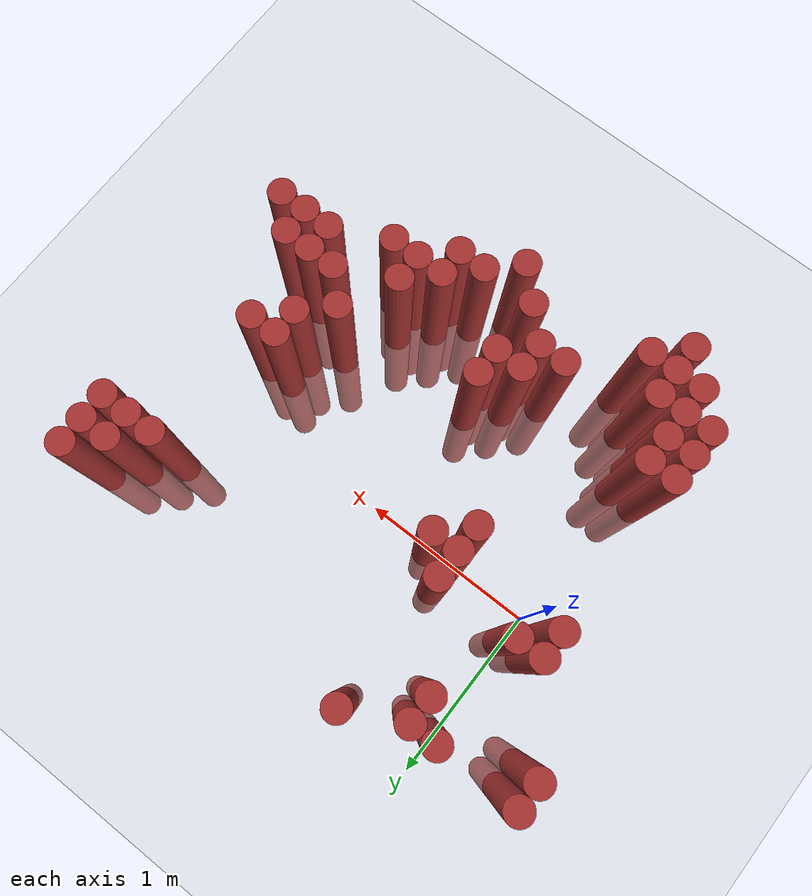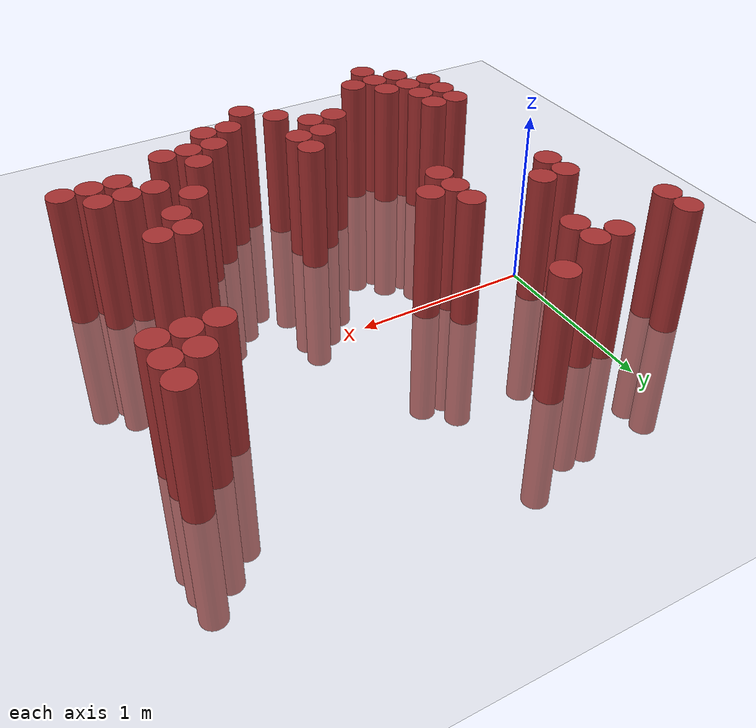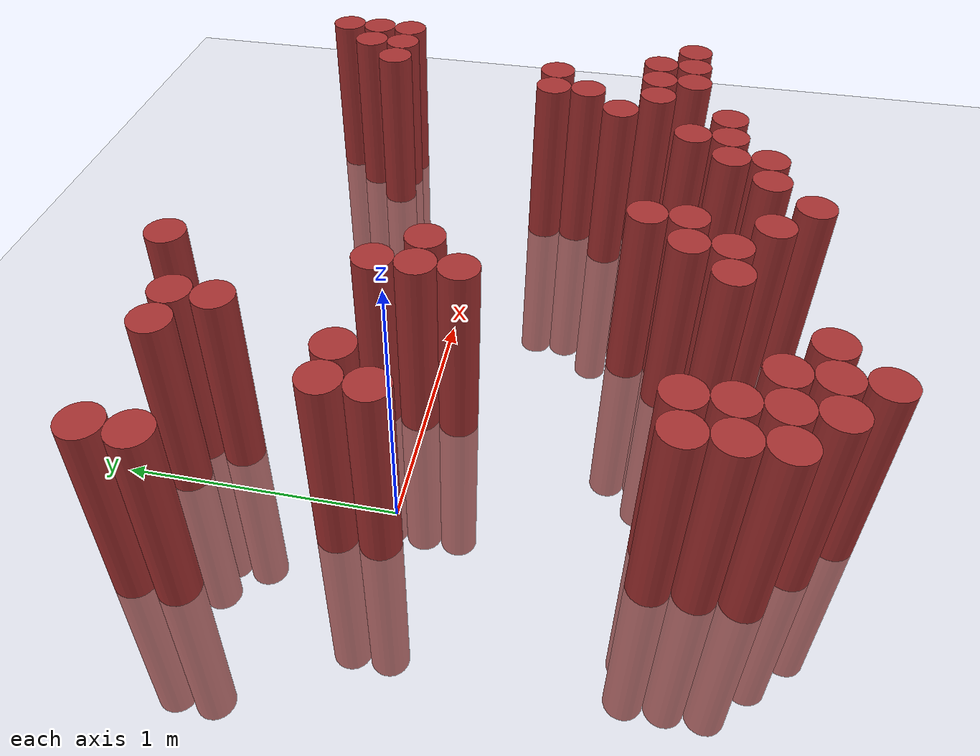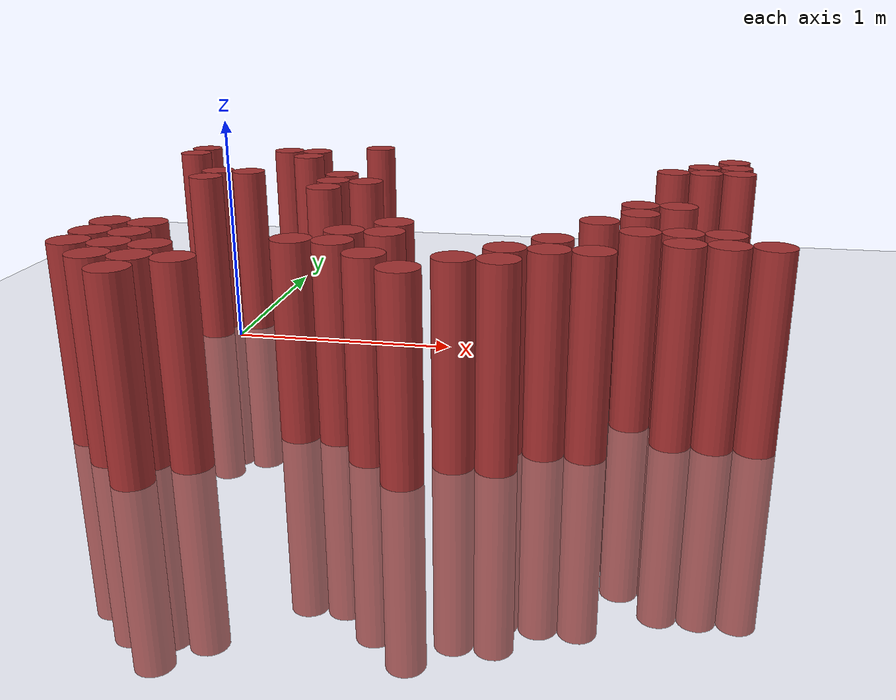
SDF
<sdf version="1.6">
 <world name="default">
  <model name="ground_plane">
   <static>1</static>
   <link name="link">
    <collision name="collision">
     <geometry><plane><normal>0 0 1</normal><size>100 100</size></plane></geometry>
     <surface><friction><ode><mu>100</mu><mu2>50</mu2></ode></friction></surface>
    </collision>
    <visual name="visual">
     <cast_shadows>0</cast_shadows>
     <geometry><plane><normal>0 0 1</normal><size>100 100</size></plane></geometry>
     <material>
      <script><uri>file://media/materials/scripts/gazebo.material</uri><name>Gazebo/Grey</name></script>
     </material>
    </visual>
   </link>
  </model>
  <model name="unit_cylinder_428">
   <static>1</static>
   <pose>-0.425000 0.625000 0.000000 0.000000 0.000000 0.000000</pose>
   <link name="link">
    <inertial>
     <mass>1</mass>
     <inertia><ixx>0.145833</ixx><ixy>0</ixy><ixz>0</ixz><iyy>0.145833</iyy><iyz>0</iyz><izz>0.125</izz></inertia>
    </inertial>
    <collision name="collision">
     <geometry><cylinder><radius>0.075000</radius><length>1.5</length></cylinder></geometry>
    </collision>
    <visual name="visual">
     <geometry><cylinder><radius>0.075000</radius><length>1.5</length></cylinder></geometry>
     <material>
      <ambient>0.648000 0.192000 0.192000 1</ambient>
      <diffuse>0.648000 0.192000 0.192000 1</diffuse>
     </material>
     <material>
      <script><name>Gazebo/Grey</name><uri>file://media/materials/scripts/gazebo.material</uri></script>
     </material>
    </visual>
   </link>
  </model>
  <model name="unit_cylinder_429">
   <static>1</static>
   <pose>-0.425000 0.775000 0.000000 0.000000 0.000000 0.000000</pose>
   <link name="link">
    <inertial>
     <mass>1</mass>
     <inertia><ixx>0.145833</ixx><ixy>0</ixy><ixz>0</ixz><iyy>0.145833</iyy><iyz>0</iyz><izz>0.125</izz></inertia>
    </inertial>
    <collision name="collision">
     <geometry><cylinder><radius>0.075000</radius><length>1.5</length></cylinder></geometry>
    </collision>
    <visual name="visual">
     <geometry><cylinder><radius>0.075000</radius><length>1.5</length></cylinder></geometry>
     <material>
      <ambient>0.648000 0.192000 0.192000 1</ambient>
      <diffuse>0.648000 0.192000 0.192000 1</diffuse>
     </material>
     <material>
      <script><name>Gazebo/Grey</name><uri>file://media/materials/scripts/gazebo.material</uri></script>
     </material>
    </visual>
   </link>
  </model>
  <model name="unit_cylinder_433">
   <static>1</static>
   <pose>-0.125000 -1.175000 0.000000 0.000000 0.000000 0.000000</pose>
   <link name="link">
    <inertial>
     <mass>1</mass>
     <inertia><ixx>0.145833</ixx><ixy>0</ixy><ixz>0</ixz><iyy>0.145833</iyy><iyz>0</iyz><izz>0.125</izz></inertia>
    </inertial>
    <collision name="collision">
     <geometry><cylinder><radius>0.075000</radius><length>1.5</length></cylinder></geometry>
    </collision>
    <visual name="visual">
     <geometry><cylinder><radius>0.075000</radius><length>1.5</length></cylinder></geometry>
     <material>
      <ambient>0.648000 0.192000 0.192000 1</ambient>
      <diffuse>0.648000 0.192000 0.192000 1</diffuse>
     </material>
     <material>
      <script><name>Gazebo/Grey</name><uri>file://media/materials/scripts/gazebo.material</uri></script>
     </material>
    </visual>
   </link>
  </model>
  <model name="unit_cylinder_434">
   <static>1</static>
   <pose>-0.125000 -1.025000 0.000000 0.000000 0.000000 0.000000</pose>
   <link name="link">
    <inertial>
     <mass>1</mass>
     <inertia><ixx>0.145833</ixx><ixy>0</ixy><ixz>0</ixz><iyy>0.145833</iyy><iyz>0</iyz><izz>0.125</izz></inertia>
    </inertial>
    <collision name="collision">
     <geometry><cylinder><radius>0.075000</radius><length>1.5</length></cylinder></geometry>
    </collision>
    <visual name="visual">
     <geometry><cylinder><radius>0.075000</radius><length>1.5</length></cylinder></geometry>
     <material>
      <ambient>0.648000 0.192000 0.192000 1</ambient>
      <diffuse>0.648000 0.192000 0.192000 1</diffuse>
     </material>
     <material>
      <script><name>Gazebo/Grey</name><uri>file://media/materials/scripts/gazebo.material</uri></script>
     </material>
    </visual>
   </link>
  </model>
  <model name="unit_cylinder_435">
   <static>1</static>
   <pose>-0.125000 -0.875000 0.000000 0.000000 0.000000 0.000000</pose>
   <link name="link">
    <inertial>
     <mass>1</mass>
     <inertia><ixx>0.145833</ixx><ixy>0</ixy><ixz>0</ixz><iyy>0.145833</iyy><iyz>0</iyz><izz>0.125</izz></inertia>
    </inertial>
    <collision name="collision">
     <geometry><cylinder><radius>0.075000</radius><length>1.5</length></cylinder></geometry>
    </collision>
    <visual name="visual">
     <geometry><cylinder><radius>0.075000</radius><length>1.5</length></cylinder></geometry>
     <material>
      <ambient>0.648000 0.192000 0.192000 1</ambient>
      <diffuse>0.648000 0.192000 0.192000 1</diffuse>
     </material>
     <material>
      <script><name>Gazebo/Grey</name><uri>file://media/materials/scripts/gazebo.material</uri></script>
     </material>
    </visual>
   </link>
  </model>
  <model name="unit_cylinder_436">
   <static>1</static>
   <pose>-0.125000 0.025000 0.000000 0.000000 0.000000 0.000000</pose>
   <link name="link">
    <inertial>
     <mass>1</mass>
     <inertia><ixx>0.145833</ixx><ixy>0</ixy><ixz>0</ixz><iyy>0.145833</iyy><iyz>0</iyz><izz>0.125</izz></inertia>
    </inertial>
    <collision name="collision">
     <geometry><cylinder><radius>0.075000</radius><length>1.5</length></cylinder></geometry>
    </collision>
    <visual name="visual">
     <geometry><cylinder><radius>0.075000</radius><length>1.5</length></cylinder></geometry>
     <material>
      <ambient>0.648000 0.192000 0.192000 1</ambient>
      <diffuse>0.648000 0.192000 0.192000 1</diffuse>
     </material>
     <material>
      <script><name>Gazebo/Grey</name><uri>file://media/materials/scripts/gazebo.material</uri></script>
     </material>
    </visual>
   </link>
  </model>
  <model name="unit_cylinder_437">
   <static>1</static>
   <pose>-0.125000 0.175000 0.000000 0.000000 0.000000 0.000000</pose>
   <link name="link">
    <inertial>
     <mass>1</mass>
     <inertia><ixx>0.145833</ixx><ixy>0</ixy><ixz>0</ixz><iyy>0.145833</iyy><iyz>0</iyz><izz>0.125</izz></inertia>
    </inertial>
    <collision name="collision">
     <geometry><cylinder><radius>0.075000</radius><length>1.5</length></cylinder></geometry>
    </collision>
    <visual name="visual">
     <geometry><cylinder><radius>0.075000</radius><length>1.5</length></cylinder></geometry>
     <material>
      <ambient>0.648000 0.192000 0.192000 1</ambient>
      <diffuse>0.648000 0.192000 0.192000 1</diffuse>
     </material>
     <material>
      <script><name>Gazebo/Grey</name><uri>file://media/materials/scripts/gazebo.material</uri></script>
     </material>
    </visual>
   </link>
  </model>
  <model name="unit_cylinder_438">
   <static>1</static>
   <pose>0.025000 -1.325000 0.000000 0.000000 0.000000 0.000000</pose>
   <link name="link">
    <inertial>
     <mass>1</mass>
     <inertia><ixx>0.145833</ixx><ixy>0</ixy><ixz>0</ixz><iyy>0.145833</iyy><iyz>0</iyz><izz>0.125</izz></inertia>
    </inertial>
    <collision name="collision">
     <geometry><cylinder><radius>0.075000</radius><length>1.5</length></cylinder></geometry>
    </collision>
    <visual name="visual">
     <geometry><cylinder><radius>0.075000</radius><length>1.5</length></cylinder></geometry>
     <material>
      <ambient>0.648000 0.192000 0.192000 1</ambient>
      <diffuse>0.648000 0.192000 0.192000 1</diffuse>
     </material>
     <material>
      <script><name>Gazebo/Grey</name><uri>file://media/materials/scripts/gazebo.material</uri></script>
     </material>
    </visual>
   </link>
  </model>
  <model name="unit_cylinder_439">
   <static>1</static>
   <pose>0.025000 -1.175000 0.000000 0.000000 0.000000 0.000000</pose>
   <link name="link">
    <inertial>
     <mass>1</mass>
     <inertia><ixx>0.145833</ixx><ixy>0</ixy><ixz>0</ixz><iyy>0.145833</iyy><iyz>0</iyz><izz>0.125</izz></inertia>
    </inertial>
    <collision name="collision">
     <geometry><cylinder><radius>0.075000</radius><length>1.5</length></cylinder></geometry>
    </collision>
    <visual name="visual">
     <geometry><cylinder><radius>0.075000</radius><length>1.5</length></cylinder></geometry>
     <material>
      <ambient>0.648000 0.192000 0.192000 1</ambient>
      <diffuse>0.648000 0.192000 0.192000 1</diffuse>
     </material>
     <material>
      <script><name>Gazebo/Grey</name><uri>file://media/materials/scripts/gazebo.material</uri></script>
     </material>
    </visual>
   </link>
  </model>
  <model name="unit_cylinder_440">
   <static>1</static>
   <pose>0.025000 -1.025000 0.000000 0.000000 0.000000 0.000000</pose>
   <link name="link">
    <inertial>
     <mass>1</mass>
     <inertia><ixx>0.145833</ixx><ixy>0</ixy><ixz>0</ixz><iyy>0.145833</iyy><iyz>0</iyz><izz>0.125</izz></inertia>
    </inertial>
    <collision name="collision">
     <geometry><cylinder><radius>0.075000</radius><length>1.5</length></cylinder></geometry>
    </collision>
    <visual name="visual">
     <geometry><cylinder><radius>0.075000</radius><length>1.5</length></cylinder></geometry>
     <material>
      <ambient>0.648000 0.192000 0.192000 1</ambient>
      <diffuse>0.648000 0.192000 0.192000 1</diffuse>
     </material>
     <material>
      <script><name>Gazebo/Grey</name><uri>file://media/materials/scripts/gazebo.material</uri></script>
     </material>
    </visual>
   </link>
  </model>
  <model name="unit_cylinder_441">
   <static>1</static>
   <pose>0.025000 -0.875000 0.000000 0.000000 0.000000 0.000000</pose>
   <link name="link">
    <inertial>
     <mass>1</mass>
     <inertia><ixx>0.145833</ixx><ixy>0</ixy><ixz>0</ixz><iyy>0.145833</iyy><iyz>0</iyz><izz>0.125</izz></inertia>
    </inertial>
    <collision name="collision">
     <geometry><cylinder><radius>0.075000</radius><length>1.5</length></cylinder></geometry>
    </collision>
    <visual name="visual">
     <geometry><cylinder><radius>0.075000</radius><length>1.5</length></cylinder></geometry>
     <material>
      <ambient>0.648000 0.192000 0.192000 1</ambient>
      <diffuse>0.648000 0.192000 0.192000 1</diffuse>
     </material>
     <material>
      <script><name>Gazebo/Grey</name><uri>file://media/materials/scripts/gazebo.material</uri></script>
     </material>
    </visual>
   </link>
  </model>
  <model name="unit_cylinder_442">
   <static>1</static>
   <pose>0.025000 0.175000 0.000000 0.000000 0.000000 0.000000</pose>
   <link name="link">
    <inertial>
     <mass>1</mass>
     <inertia><ixx>0.145833</ixx><ixy>0</ixy><ixz>0</ixz><iyy>0.145833</iyy><iyz>0</iyz><izz>0.125</izz></inertia>
    </inertial>
    <collision name="collision">
     <geometry><cylinder><radius>0.075000</radius><length>1.5</length></cylinder></geometry>
    </collision>
    <visual name="visual">
     <geometry><cylinder><radius>0.075000</radius><length>1.5</length></cylinder></geometry>
     <material>
      <ambient>0.648000 0.192000 0.192000 1</ambient>
      <diffuse>0.648000 0.192000 0.192000 1</diffuse>
     </material>
     <material>
      <script><name>Gazebo/Grey</name><uri>file://media/materials/scripts/gazebo.material</uri></script>
     </material>
    </visual>
   </link>
  </model>
  <model name="unit_cylinder_443">
   <static>1</static>
   <pose>0.025000 0.775000 0.000000 0.000000 0.000000 0.000000</pose>
   <link name="link">
    <inertial>
     <mass>1</mass>
     <inertia><ixx>0.145833</ixx><ixy>0</ixy><ixz>0</ixz><iyy>0.145833</iyy><iyz>0</iyz><izz>0.125</izz></inertia>
    </inertial>
    <collision name="collision">
     <geometry><cylinder><radius>0.075000</radius><length>1.5</length></cylinder></geometry>
    </collision>
    <visual name="visual">
     <geometry><cylinder><radius>0.075000</radius><length>1.5</length></cylinder></geometry>
     <material>
      <ambient>0.648000 0.192000 0.192000 1</ambient>
      <diffuse>0.648000 0.192000 0.192000 1</diffuse>
     </material>
     <material>
      <script><name>Gazebo/Grey</name><uri>file://media/materials/scripts/gazebo.material</uri></script>
     </material>
    </visual>
   </link>
  </model>
  <model name="unit_cylinder_445">
   <static>1</static>
   <pose>0.175000 -1.475000 0.000000 0.000000 0.000000 0.000000</pose>
   <link name="link">
    <inertial>
     <mass>1</mass>
     <inertia><ixx>0.145833</ixx><ixy>0</ixy><ixz>0</ixz><iyy>0.145833</iyy><iyz>0</iyz><izz>0.125</izz></inertia>
    </inertial>
    <collision name="collision">
     <geometry><cylinder><radius>0.075000</radius><length>1.5</length></cylinder></geometry>
    </collision>
    <visual name="visual">
     <geometry><cylinder><radius>0.075000</radius><length>1.5</length></cylinder></geometry>
     <material>
      <ambient>0.648000 0.192000 0.192000 1</ambient>
      <diffuse>0.648000 0.192000 0.192000 1</diffuse>
     </material>
     <material>
      <script><name>Gazebo/Grey</name><uri>file://media/materials/scripts/gazebo.material</uri></script>
     </material>
    </visual>
   </link>
  </model>
  <model name="unit_cylinder_446">
   <static>1</static>
   <pose>0.175000 -1.325000 0.000000 0.000000 0.000000 0.000000</pose>
   <link name="link">
    <inertial>
     <mass>1</mass>
     <inertia><ixx>0.145833</ixx><ixy>0</ixy><ixz>0</ixz><iyy>0.145833</iyy><iyz>0</iyz><izz>0.125</izz></inertia>
    </inertial>
    <collision name="collision">
     <geometry><cylinder><radius>0.075000</radius><length>1.5</length></cylinder></geometry>
    </collision>
    <visual name="visual">
     <geometry><cylinder><radius>0.075000</radius><length>1.5</length></cylinder></geometry>
     <material>
      <ambient>0.648000 0.192000 0.192000 1</ambient>
      <diffuse>0.648000 0.192000 0.192000 1</diffuse>
     </material>
     <material>
      <script><name>Gazebo/Grey</name><uri>file://media/materials/scripts/gazebo.material</uri></script>
     </material>
    </visual>
   </link>
  </model>
  <model name="unit_cylinder_447">
   <static>1</static>
   <pose>0.175000 -1.175000 0.000000 0.000000 0.000000 0.000000</pose>
   <link name="link">
    <inertial>
     <mass>1</mass>
     <inertia><ixx>0.145833</ixx><ixy>0</ixy><ixz>0</ixz><iyy>0.145833</iyy><iyz>0</iyz><izz>0.125</izz></inertia>
    </inertial>
    <collision name="collision">
     <geometry><cylinder><radius>0.075000</radius><length>1.5</length></cylinder></geometry>
    </collision>
    <visual name="visual">
     <geometry><cylinder><radius>0.075000</radius><length>1.5</length></cylinder></geometry>
     <material>
      <ambient>0.648000 0.192000 0.192000 1</ambient>
      <diffuse>0.648000 0.192000 0.192000 1</diffuse>
     </material>
     <material>
      <script><name>Gazebo/Grey</name><uri>file://media/materials/scripts/gazebo.material</uri></script>
     </material>
    </visual>
   </link>
  </model>
  <model name="unit_cylinder_448">
   <static>1</static>
   <pose>0.175000 0.625000 0.000000 0.000000 0.000000 0.000000</pose>
   <link name="link">
    <inertial>
     <mass>1</mass>
     <inertia><ixx>0.145833</ixx><ixy>0</ixy><ixz>0</ixz><iyy>0.145833</iyy><iyz>0</iyz><izz>0.125</izz></inertia>
    </inertial>
    <collision name="collision">
     <geometry><cylinder><radius>0.075000</radius><length>1.5</length></cylinder></geometry>
    </collision>
    <visual name="visual">
     <geometry><cylinder><radius>0.075000</radius><length>1.5</length></cylinder></geometry>
     <material>
      <ambient>0.648000 0.192000 0.192000 1</ambient>
      <diffuse>0.648000 0.192000 0.192000 1</diffuse>
     </material>
     <material>
      <script><name>Gazebo/Grey</name><uri>file://media/materials/scripts/gazebo.material</uri></script>
     </material>
    </visual>
   </link>
  </model>
  <model name="unit_cylinder_449">
   <static>1</static>
   <pose>0.175000 0.775000 0.000000 0.000000 0.000000 0.000000</pose>
   <link name="link">
    <inertial>
     <mass>1</mass>
     <inertia><ixx>0.145833</ixx><ixy>0</ixy><ixz>0</ixz><iyy>0.145833</iyy><iyz>0</iyz><izz>0.125</izz></inertia>
    </inertial>
    <collision name="collision">
     <geometry><cylinder><radius>0.075000</radius><length>1.5</length></cylinder></geometry>
    </collision>
    <visual name="visual">
     <geometry><cylinder><radius>0.075000</radius><length>1.5</length></cylinder></geometry>
     <material>
      <ambient>0.648000 0.192000 0.192000 1</ambient>
      <diffuse>0.648000 0.192000 0.192000 1</diffuse>
     </material>
     <material>
      <script><name>Gazebo/Grey</name><uri>file://media/materials/scripts/gazebo.material</uri></script>
     </material>
    </visual>
   </link>
  </model>
  <model name="unit_cylinder_453">
   <static>1</static>
   <pose>0.325000 -1.325000 0.000000 0.000000 0.000000 0.000000</pose>
   <link name="link">
    <inertial>
     <mass>1</mass>
     <inertia><ixx>0.145833</ixx><ixy>0</ixy><ixz>0</ixz><iyy>0.145833</iyy><iyz>0</iyz><izz>0.125</izz></inertia>
    </inertial>
    <collision name="collision">
     <geometry><cylinder><radius>0.075000</radius><length>1.5</length></cylinder></geometry>
    </collision>
    <visual name="visual">
     <geometry><cylinder><radius>0.075000</radius><length>1.5</length></cylinder></geometry>
     <material>
      <ambient>0.648000 0.192000 0.192000 1</ambient>
      <diffuse>0.648000 0.192000 0.192000 1</diffuse>
     </material>
     <material>
      <script><name>Gazebo/Grey</name><uri>file://media/materials/scripts/gazebo.material</uri></script>
     </material>
    </visual>
   </link>
  </model>
  <model name="unit_cylinder_457">
   <static>1</static>
   <pose>0.475000 -0.125000 0.000000 0.000000 0.000000 0.000000</pose>
   <link name="link">
    <inertial>
     <mass>1</mass>
     <inertia><ixx>0.145833</ixx><ixy>0</ixy><ixz>0</ixz><iyy>0.145833</iyy><iyz>0</iyz><izz>0.125</izz></inertia>
    </inertial>
    <collision name="collision">
     <geometry><cylinder><radius>0.075000</radius><length>1.5</length></cylinder></geometry>
    </collision>
    <visual name="visual">
     <geometry><cylinder><radius>0.075000</radius><length>1.5</length></cylinder></geometry>
     <material>
      <ambient>0.648000 0.192000 0.192000 1</ambient>
      <diffuse>0.648000 0.192000 0.192000 1</diffuse>
     </material>
     <material>
      <script><name>Gazebo/Grey</name><uri>file://media/materials/scripts/gazebo.material</uri></script>
     </material>
    </visual>
   </link>
  </model>
  <model name="unit_cylinder_458">
   <static>1</static>
   <pose>0.475000 0.025000 0.000000 0.000000 0.000000 0.000000</pose>
   <link name="link">
    <inertial>
     <mass>1</mass>
     <inertia><ixx>0.145833</ixx><ixy>0</ixy><ixz>0</ixz><iyy>0.145833</iyy><iyz>0</iyz><izz>0.125</izz></inertia>
    </inertial>
    <collision name="collision">
     <geometry><cylinder><radius>0.075000</radius><length>1.5</length></cylinder></geometry>
    </collision>
    <visual name="visual">
     <geometry><cylinder><radius>0.075000</radius><length>1.5</length></cylinder></geometry>
     <material>
      <ambient>0.648000 0.192000 0.192000 1</ambient>
      <diffuse>0.648000 0.192000 0.192000 1</diffuse>
     </material>
     <material>
      <script><name>Gazebo/Grey</name><uri>file://media/materials/scripts/gazebo.material</uri></script>
     </material>
    </visual>
   </link>
  </model>
  <model name="unit_cylinder_459">
   <static>1</static>
   <pose>0.475000 0.175000 0.000000 0.000000 0.000000 0.000000</pose>
   <link name="link">
    <inertial>
     <mass>1</mass>
     <inertia><ixx>0.145833</ixx><ixy>0</ixy><ixz>0</ixz><iyy>0.145833</iyy><iyz>0</iyz><izz>0.125</izz></inertia>
    </inertial>
    <collision name="collision">
     <geometry><cylinder><radius>0.075000</radius><length>1.5</length></cylinder></geometry>
    </collision>
    <visual name="visual">
     <geometry><cylinder><radius>0.075000</radius><length>1.5</length></cylinder></geometry>
     <material>
      <ambient>0.648000 0.192000 0.192000 1</ambient>
      <diffuse>0.648000 0.192000 0.192000 1</diffuse>
     </material>
     <material>
      <script><name>Gazebo/Grey</name><uri>file://media/materials/scripts/gazebo.material</uri></script>
     </material>
    </visual>
   </link>
  </model>
  <model name="unit_cylinder_460">
   <static>1</static>
   <pose>0.475000 0.925000 0.000000 0.000000 0.000000 0.000000</pose>
   <link name="link">
    <inertial>
     <mass>1</mass>
     <inertia><ixx>0.145833</ixx><ixy>0</ixy><ixz>0</ixz><iyy>0.145833</iyy><iyz>0</iyz><izz>0.125</izz></inertia>
    </inertial>
    <collision name="collision">
     <geometry><cylinder><radius>0.075000</radius><length>1.5</length></cylinder></geometry>
    </collision>
    <visual name="visual">
     <geometry><cylinder><radius>0.075000</radius><length>1.5</length></cylinder></geometry>
     <material>
      <ambient>0.648000 0.192000 0.192000 1</ambient>
      <diffuse>0.648000 0.192000 0.192000 1</diffuse>
     </material>
     <material>
      <script><name>Gazebo/Grey</name><uri>file://media/materials/scripts/gazebo.material</uri></script>
     </material>
    </visual>
   </link>
  </model>
  <model name="unit_cylinder_466">
   <static>1</static>
   <pose>0.625000 -1.025000 0.000000 0.000000 0.000000 0.000000</pose>
   <link name="link">
    <inertial>
     <mass>1</mass>
     <inertia><ixx>0.145833</ixx><ixy>0</ixy><ixz>0</ixz><iyy>0.145833</iyy><iyz>0</iyz><izz>0.125</izz></inertia>
    </inertial>
    <collision name="collision">
     <geometry><cylinder><radius>0.075000</radius><length>1.5</length></cylinder></geometry>
    </collision>
    <visual name="visual">
     <geometry><cylinder><radius>0.075000</radius><length>1.5</length></cylinder></geometry>
     <material>
      <ambient>0.648000 0.192000 0.192000 1</ambient>
      <diffuse>0.648000 0.192000 0.192000 1</diffuse>
     </material>
     <material>
      <script><name>Gazebo/Grey</name><uri>file://media/materials/scripts/gazebo.material</uri></script>
     </material>
    </visual>
   </link>
  </model>
  <model name="unit_cylinder_467">
   <static>1</static>
   <pose>0.625000 0.025000 0.000000 0.000000 0.000000 0.000000</pose>
   <link name="link">
    <inertial>
     <mass>1</mass>
     <inertia><ixx>0.145833</ixx><ixy>0</ixy><ixz>0</ixz><iyy>0.145833</iyy><iyz>0</iyz><izz>0.125</izz></inertia>
    </inertial>
    <collision name="collision">
     <geometry><cylinder><radius>0.075000</radius><length>1.5</length></cylinder></geometry>
    </collision>
    <visual name="visual">
     <geometry><cylinder><radius>0.075000</radius><length>1.5</length></cylinder></geometry>
     <material>
      <ambient>0.648000 0.192000 0.192000 1</ambient>
      <diffuse>0.648000 0.192000 0.192000 1</diffuse>
     </material>
     <material>
      <script><name>Gazebo/Grey</name><uri>file://media/materials/scripts/gazebo.material</uri></script>
     </material>
    </visual>
   </link>
  </model>
  <model name="unit_cylinder_473">
   <static>1</static>
   <pose>0.775000 -1.025000 0.000000 0.000000 0.000000 0.000000</pose>
   <link name="link">
    <inertial>
     <mass>1</mass>
     <inertia><ixx>0.145833</ixx><ixy>0</ixy><ixz>0</ixz><iyy>0.145833</iyy><iyz>0</iyz><izz>0.125</izz></inertia>
    </inertial>
    <collision name="collision">
     <geometry><cylinder><radius>0.075000</radius><length>1.5</length></cylinder></geometry>
    </collision>
    <visual name="visual">
     <geometry><cylinder><radius>0.075000</radius><length>1.5</length></cylinder></geometry>
     <material>
      <ambient>0.648000 0.192000 0.192000 1</ambient>
      <diffuse>0.648000 0.192000 0.192000 1</diffuse>
     </material>
     <material>
      <script><name>Gazebo/Grey</name><uri>file://media/materials/scripts/gazebo.material</uri></script>
     </material>
    </visual>
   </link>
  </model>
  <model name="unit_cylinder_474">
   <static>1</static>
   <pose>0.775000 -0.875000 0.000000 0.000000 0.000000 0.000000</pose>
   <link name="link">
    <inertial>
     <mass>1</mass>
     <inertia><ixx>0.145833</ixx><ixy>0</ixy><ixz>0</ixz><iyy>0.145833</iyy><iyz>0</iyz><izz>0.125</izz></inertia>
    </inertial>
    <collision name="collision">
     <geometry><cylinder><radius>0.075000</radius><length>1.5</length></cylinder></geometry>
    </collision>
    <visual name="visual">
     <geometry><cylinder><radius>0.075000</radius><length>1.5</length></cylinder></geometry>
     <material>
      <ambient>0.648000 0.192000 0.192000 1</ambient>
      <diffuse>0.648000 0.192000 0.192000 1</diffuse>
     </material>
     <material>
      <script><name>Gazebo/Grey</name><uri>file://media/materials/scripts/gazebo.material</uri></script>
     </material>
    </visual>
   </link>
  </model>
  <model name="unit_cylinder_475">
   <static>1</static>
   <pose>0.925000 -1.175000 0.000000 0.000000 0.000000 0.000000</pose>
   <link name="link">
    <inertial>
     <mass>1</mass>
     <inertia><ixx>0.145833</ixx><ixy>0</ixy><ixz>0</ixz><iyy>0.145833</iyy><iyz>0</iyz><izz>0.125</izz></inertia>
    </inertial>
    <collision name="collision">
     <geometry><cylinder><radius>0.075000</radius><length>1.5</length></cylinder></geometry>
    </collision>
    <visual name="visual">
     <geometry><cylinder><radius>0.075000</radius><length>1.5</length></cylinder></geometry>
     <material>
      <ambient>0.648000 0.192000 0.192000 1</ambient>
      <diffuse>0.648000 0.192000 0.192000 1</diffuse>
     </material>
     <material>
      <script><name>Gazebo/Grey</name><uri>file://media/materials/scripts/gazebo.material</uri></script>
     </material>
    </visual>
   </link>
  </model>
  <model name="unit_cylinder_476">
   <static>1</static>
   <pose>0.925000 -0.875000 0.000000 0.000000 0.000000 0.000000</pose>
   <link name="link">
    <inertial>
     <mass>1</mass>
     <inertia><ixx>0.145833</ixx><ixy>0</ixy><ixz>0</ixz><iyy>0.145833</iyy><iyz>0</iyz><izz>0.125</izz></inertia>
    </inertial>
    <collision name="collision">
     <geometry><cylinder><radius>0.075000</radius><length>1.5</length></cylinder></geometry>
    </collision>
    <visual name="visual">
     <geometry><cylinder><radius>0.075000</radius><length>1.5</length></cylinder></geometry>
     <material>
      <ambient>0.648000 0.192000 0.192000 1</ambient>
      <diffuse>0.648000 0.192000 0.192000 1</diffuse>
     </material>
     <material>
      <script><name>Gazebo/Grey</name><uri>file://media/materials/scripts/gazebo.material</uri></script>
     </material>
    </visual>
   </link>
  </model>
  <model name="unit_cylinder_477">
   <static>1</static>
   <pose>0.925000 -0.725000 0.000000 0.000000 0.000000 0.000000</pose>
   <link name="link">
    <inertial>
     <mass>1</mass>
     <inertia><ixx>0.145833</ixx><ixy>0</ixy><ixz>0</ixz><iyy>0.145833</iyy><iyz>0</iyz><izz>0.125</izz></inertia>
    </inertial>
    <collision name="collision">
     <geometry><cylinder><radius>0.075000</radius><length>1.5</length></cylinder></geometry>
    </collision>
    <visual name="visual">
     <geometry><cylinder><radius>0.075000</radius><length>1.5</length></cylinder></geometry>
     <material>
      <ambient>0.648000 0.192000 0.192000 1</ambient>
      <diffuse>0.648000 0.192000 0.192000 1</diffuse>
     </material>
     <material>
      <script><name>Gazebo/Grey</name><uri>file://media/materials/scripts/gazebo.material</uri></script>
     </material>
    </visual>
   </link>
  </model>
  <model name="unit_cylinder_478">
   <static>1</static>
   <pose>1.075000 -1.325000 0.000000 0.000000 0.000000 0.000000</pose>
   <link name="link">
    <inertial>
     <mass>1</mass>
     <inertia><ixx>0.145833</ixx><ixy>0</ixy><ixz>0</ixz><iyy>0.145833</iyy><iyz>0</iyz><izz>0.125</izz></inertia>
    </inertial>
    <collision name="collision">
     <geometry><cylinder><radius>0.075000</radius><length>1.5</length></cylinder></geometry>
    </collision>
    <visual name="visual">
     <geometry><cylinder><radius>0.075000</radius><length>1.5</length></cylinder></geometry>
     <material>
      <ambient>0.648000 0.192000 0.192000 1</ambient>
      <diffuse>0.648000 0.192000 0.192000 1</diffuse>
     </material>
     <material>
      <script><name>Gazebo/Grey</name><uri>file://media/materials/scripts/gazebo.material</uri></script>
     </material>
    </visual>
   </link>
  </model>
  <model name="unit_cylinder_479">
   <static>1</static>
   <pose>1.225000 -1.175000 0.000000 0.000000 0.000000 0.000000</pose>
   <link name="link">
    <inertial>
     <mass>1</mass>
     <inertia><ixx>0.145833</ixx><ixy>0</ixy><ixz>0</ixz><iyy>0.145833</iyy><iyz>0</iyz><izz>0.125</izz></inertia>
    </inertial>
    <collision name="collision">
     <geometry><cylinder><radius>0.075000</radius><length>1.5</length></cylinder></geometry>
    </collision>
    <visual name="visual">
     <geometry><cylinder><radius>0.075000</radius><length>1.5</length></cylinder></geometry>
     <material>
      <ambient>0.648000 0.192000 0.192000 1</ambient>
      <diffuse>0.648000 0.192000 0.192000 1</diffuse>
     </material>
     <material>
      <script><name>Gazebo/Grey</name><uri>file://media/materials/scripts/gazebo.material</uri></script>
     </material>
    </visual>
   </link>
  </model>
  <model name="unit_cylinder_480">
   <static>1</static>
   <pose>1.375000 -1.175000 0.000000 0.000000 0.000000 0.000000</pose>
   <link name="link">
    <inertial>
     <mass>1</mass>
     <inertia><ixx>0.145833</ixx><ixy>0</ixy><ixz>0</ixz><iyy>0.145833</iyy><iyz>0</iyz><izz>0.125</izz></inertia>
    </inertial>
    <collision name="collision">
     <geometry><cylinder><radius>0.075000</radius><length>1.5</length></cylinder></geometry>
    </collision>
    <visual name="visual">
     <geometry><cylinder><radius>0.075000</radius><length>1.5</length></cylinder></geometry>
     <material>
      <ambient>0.648000 0.192000 0.192000 1</ambient>
      <diffuse>0.648000 0.192000 0.192000 1</diffuse>
     </material>
     <material>
      <script><name>Gazebo/Grey</name><uri>file://media/materials/scripts/gazebo.material</uri></script>
     </material>
    </visual>
   </link>
  </model>
  <model name="unit_cylinder_481">
   <static>1</static>
   <pose>1.375000 -1.025000 0.000000 0.000000 0.000000 0.000000</pose>
   <link name="link">
    <inertial>
     <mass>1</mass>
     <inertia><ixx>0.145833</ixx><ixy>0</ixy><ixz>0</ixz><iyy>0.145833</iyy><iyz>0</iyz><izz>0.125</izz></inertia>
    </inertial>
    <collision name="collision">
     <geometry><cylinder><radius>0.075000</radius><length>1.5</length></cylinder></geometry>
    </collision>
    <visual name="visual">
     <geometry><cylinder><radius>0.075000</radius><length>1.5</length></cylinder></geometry>
     <material>
      <ambient>0.648000 0.192000 0.192000 1</ambient>
      <diffuse>0.648000 0.192000 0.192000 1</diffuse>
     </material>
     <material>
      <script><name>Gazebo/Grey</name><uri>file://media/materials/scripts/gazebo.material</uri></script>
     </material>
    </visual>
   </link>
  </model>
  <model name="unit_cylinder_482">
   <static>1</static>
   <pose>1.525000 -1.025000 0.000000 0.000000 0.000000 0.000000</pose>
   <link name="link">
    <inertial>
     <mass>1</mass>
     <inertia><ixx>0.145833</ixx><ixy>0</ixy><ixz>0</ixz><iyy>0.145833</iyy><iyz>0</iyz><izz>0.125</izz></inertia>
    </inertial>
    <collision name="collision">
     <geometry><cylinder><radius>0.075000</radius><length>1.5</length></cylinder></geometry>
    </collision>
    <visual name="visual">
     <geometry><cylinder><radius>0.075000</radius><length>1.5</length></cylinder></geometry>
     <material>
      <ambient>0.648000 0.192000 0.192000 1</ambient>
      <diffuse>0.648000 0.192000 0.192000 1</diffuse>
     </material>
     <material>
      <script><name>Gazebo/Grey</name><uri>file://media/materials/scripts/gazebo.material</uri></script>
     </material>
    </visual>
   </link>
  </model>
  <model name="unit_cylinder_483">
   <static>1</static>
   <pose>1.525000 -0.875000 0.000000 0.000000 0.000000 0.000000</pose>
   <link name="link">
    <inertial>
     <mass>1</mass>
     <inertia><ixx>0.145833</ixx><ixy>0</ixy><ixz>0</ixz><iyy>0.145833</iyy><iyz>0</iyz><izz>0.125</izz></inertia>
    </inertial>
    <collision name="collision">
     <geometry><cylinder><radius>0.075000</radius><length>1.5</length></cylinder></geometry>
    </collision>
    <visual name="visual">
     <geometry><cylinder><radius>0.075000</radius><length>1.5</length></cylinder></geometry>
     <material>
      <ambient>0.648000 0.192000 0.192000 1</ambient>
      <diffuse>0.648000 0.192000 0.192000 1</diffuse>
     </material>
     <material>
      <script><name>Gazebo/Grey</name><uri>file://media/materials/scripts/gazebo.material</uri></script>
     </material>
    </visual>
   </link>
  </model>
  <model name="unit_cylinder_484">
   <static>1</static>
   <pose>1.675000 -1.025000 0.000000 0.000000 0.000000 0.000000</pose>
   <link name="link">
    <inertial>
     <mass>1</mass>
     <inertia><ixx>0.145833</ixx><ixy>0</ixy><ixz>0</ixz><iyy>0.145833</iyy><iyz>0</iyz><izz>0.125</izz></inertia>
    </inertial>
    <collision name="collision">
     <geometry><cylinder><radius>0.075000</radius><length>1.5</length></cylinder></geometry>
    </collision>
    <visual name="visual">
     <geometry><cylinder><radius>0.075000</radius><length>1.5</length></cylinder></geometry>
     <material>
      <ambient>0.648000 0.192000 0.192000 1</ambient>
      <diffuse>0.648000 0.192000 0.192000 1</diffuse>
     </material>
     <material>
      <script><name>Gazebo/Grey</name><uri>file://media/materials/scripts/gazebo.material</uri></script>
     </material>
    </visual>
   </link>
  </model>
  <model name="unit_cylinder_485">
   <static>1</static>
   <pose>1.675000 -0.575000 0.000000 0.000000 0.000000 0.000000</pose>
   <link name="link">
    <inertial>
     <mass>1</mass>
     <inertia><ixx>0.145833</ixx><ixy>0</ixy><ixz>0</ixz><iyy>0.145833</iyy><iyz>0</iyz><izz>0.125</izz></inertia>
    </inertial>
    <collision name="collision">
     <geometry><cylinder><radius>0.075000</radius><length>1.5</length></cylinder></geometry>
    </collision>
    <visual name="visual">
     <geometry><cylinder><radius>0.075000</radius><length>1.5</length></cylinder></geometry>
     <material>
      <ambient>0.648000 0.192000 0.192000 1</ambient>
      <diffuse>0.648000 0.192000 0.192000 1</diffuse>
     </material>
     <material>
      <script><name>Gazebo/Grey</name><uri>file://media/materials/scripts/gazebo.material</uri></script>
     </material>
    </visual>
   </link>
  </model>
  <model name="unit_cylinder_486">
   <static>1</static>
   <pose>1.825000 -0.725000 0.000000 0.000000 0.000000 0.000000</pose>
   <link name="link">
    <inertial>
     <mass>1</mass>
     <inertia><ixx>0.145833</ixx><ixy>0</ixy><ixz>0</ixz><iyy>0.145833</iyy><iyz>0</iyz><izz>0.125</izz></inertia>
    </inertial>
    <collision name="collision">
     <geometry><cylinder><radius>0.075000</radius><length>1.5</length></cylinder></geometry>
    </collision>
    <visual name="visual">
     <geometry><cylinder><radius>0.075000</radius><length>1.5</length></cylinder></geometry>
     <material>
      <ambient>0.648000 0.192000 0.192000 1</ambient>
      <diffuse>0.648000 0.192000 0.192000 1</diffuse>
     </material>
     <material>
      <script><name>Gazebo/Grey</name><uri>file://media/materials/scripts/gazebo.material</uri></script>
     </material>
    </visual>
   </link>
  </model>
  <model name="unit_cylinder_487">
   <static>1</static>
   <pose>1.825000 -0.425000 0.000000 0.000000 0.000000 0.000000</pose>
   <link name="link">
    <inertial>
     <mass>1</mass>
     <inertia><ixx>0.145833</ixx><ixy>0</ixy><ixz>0</ixz><iyy>0.145833</iyy><iyz>0</iyz><izz>0.125</izz></inertia>
    </inertial>
    <collision name="collision">
     <geometry><cylinder><radius>0.075000</radius><length>1.5</length></cylinder></geometry>
    </collision>
    <visual name="visual">
     <geometry><cylinder><radius>0.075000</radius><length>1.5</length></cylinder></geometry>
     <material>
      <ambient>0.648000 0.192000 0.192000 1</ambient>
      <diffuse>0.648000 0.192000 0.192000 1</diffuse>
     </material>
     <material>
      <script><name>Gazebo/Grey</name><uri>file://media/materials/scripts/gazebo.material</uri></script>
     </material>
    </visual>
   </link>
  </model>
  <model name="unit_cylinder_488">
   <static>1</static>
   <pose>1.825000 -0.275000 0.000000 0.000000 0.000000 0.000000</pose>
   <link name="link">
    <inertial>
     <mass>1</mass>
     <inertia><ixx>0.145833</ixx><ixy>0</ixy><ixz>0</ixz><iyy>0.145833</iyy><iyz>0</iyz><izz>0.125</izz></inertia>
    </inertial>
    <collision name="collision">
     <geometry><cylinder><radius>0.075000</radius><length>1.5</length></cylinder></geometry>
    </collision>
    <visual name="visual">
     <geometry><cylinder><radius>0.075000</radius><length>1.5</length></cylinder></geometry>
     <material>
      <ambient>0.648000 0.192000 0.192000 1</ambient>
      <diffuse>0.648000 0.192000 0.192000 1</diffuse>
     </material>
     <material>
      <script><name>Gazebo/Grey</name><uri>file://media/materials/scripts/gazebo.material</uri></script>
     </material>
    </visual>
   </link>
  </model>
  <model name="unit_cylinder_490">
   <static>1</static>
   <pose>1.975000 -0.875000 0.000000 0.000000 0.000000 0.000000</pose>
   <link name="link">
    <inertial>
     <mass>1</mass>
     <inertia><ixx>0.145833</ixx><ixy>0</ixy><ixz>0</ixz><iyy>0.145833</iyy><iyz>0</iyz><izz>0.125</izz></inertia>
    </inertial>
    <collision name="collision">
     <geometry><cylinder><radius>0.075000</radius><length>1.5</length></cylinder></geometry>
    </collision>
    <visual name="visual">
     <geometry><cylinder><radius>0.075000</radius><length>1.5</length></cylinder></geometry>
     <material>
      <ambient>0.648000 0.192000 0.192000 1</ambient>
      <diffuse>0.648000 0.192000 0.192000 1</diffuse>
     </material>
     <material>
      <script><name>Gazebo/Grey</name><uri>file://media/materials/scripts/gazebo.material</uri></script>
     </material>
    </visual>
   </link>
  </model>
  <model name="unit_cylinder_491">
   <static>1</static>
   <pose>1.975000 -0.725000 0.000000 0.000000 0.000000 0.000000</pose>
   <link name="link">
    <inertial>
     <mass>1</mass>
     <inertia><ixx>0.145833</ixx><ixy>0</ixy><ixz>0</ixz><iyy>0.145833</iyy><iyz>0</iyz><izz>0.125</izz></inertia>
    </inertial>
    <collision name="collision">
     <geometry><cylinder><radius>0.075000</radius><length>1.5</length></cylinder></geometry>
    </collision>
    <visual name="visual">
     <geometry><cylinder><radius>0.075000</radius><length>1.5</length></cylinder></geometry>
     <material>
      <ambient>0.648000 0.192000 0.192000 1</ambient>
      <diffuse>0.648000 0.192000 0.192000 1</diffuse>
     </material>
     <material>
      <script><name>Gazebo/Grey</name><uri>file://media/materials/scripts/gazebo.material</uri></script>
     </material>
    </visual>
   </link>
  </model>
  <model name="unit_cylinder_492">
   <static>1</static>
   <pose>1.975000 -0.275000 0.000000 0.000000 0.000000 0.000000</pose>
   <link name="link">
    <inertial>
     <mass>1</mass>
     <inertia><ixx>0.145833</ixx><ixy>0</ixy><ixz>0</ixz><iyy>0.145833</iyy><iyz>0</iyz><izz>0.125</izz></inertia>
    </inertial>
    <collision name="collision">
     <geometry><cylinder><radius>0.075000</radius><length>1.5</length></cylinder></geometry>
    </collision>
    <visual name="visual">
     <geometry><cylinder><radius>0.075000</radius><length>1.5</length></cylinder></geometry>
     <material>
      <ambient>0.648000 0.192000 0.192000 1</ambient>
      <diffuse>0.648000 0.192000 0.192000 1</diffuse>
     </material>
     <material>
      <script><name>Gazebo/Grey</name><uri>file://media/materials/scripts/gazebo.material</uri></script>
     </material>
    </visual>
   </link>
  </model>
  <model name="unit_cylinder_493">
   <static>1</static>
   <pose>1.975000 0.475000 0.000000 0.000000 0.000000 0.000000</pose>
   <link name="link">
    <inertial>
     <mass>1</mass>
     <inertia><ixx>0.145833</ixx><ixy>0</ixy><ixz>0</ixz><iyy>0.145833</iyy><iyz>0</iyz><izz>0.125</izz></inertia>
    </inertial>
    <collision name="collision">
     <geometry><cylinder><radius>0.075000</radius><length>1.5</length></cylinder></geometry>
    </collision>
    <visual name="visual">
     <geometry><cylinder><radius>0.075000</radius><length>1.5</length></cylinder></geometry>
     <material>
      <ambient>0.648000 0.192000 0.192000 1</ambient>
      <diffuse>0.648000 0.192000 0.192000 1</diffuse>
     </material>
     <material>
      <script><name>Gazebo/Grey</name><uri>file://media/materials/scripts/gazebo.material</uri></script>
     </material>
    </visual>
   </link>
  </model>
  <model name="unit_cylinder_497">
   <static>1</static>
   <pose>2.125000 -0.875000 0.000000 0.000000 0.000000 0.000000</pose>
   <link name="link">
    <inertial>
     <mass>1</mass>
     <inertia><ixx>0.145833</ixx><ixy>0</ixy><ixz>0</ixz><iyy>0.145833</iyy><iyz>0</iyz><izz>0.125</izz></inertia>
    </inertial>
    <collision name="collision">
     <geometry><cylinder><radius>0.075000</radius><length>1.5</length></cylinder></geometry>
    </collision>
    <visual name="visual">
     <geometry><cylinder><radius>0.075000</radius><length>1.5</length></cylinder></geometry>
     <material>
      <ambient>0.648000 0.192000 0.192000 1</ambient>
      <diffuse>0.648000 0.192000 0.192000 1</diffuse>
     </material>
     <material>
      <script><name>Gazebo/Grey</name><uri>file://media/materials/scripts/gazebo.material</uri></script>
     </material>
    </visual>
   </link>
  </model>
  <model name="unit_cylinder_498">
   <static>1</static>
   <pose>2.125000 -0.725000 0.000000 0.000000 0.000000 0.000000</pose>
   <link name="link">
    <inertial>
     <mass>1</mass>
     <inertia><ixx>0.145833</ixx><ixy>0</ixy><ixz>0</ixz><iyy>0.145833</iyy><iyz>0</iyz><izz>0.125</izz></inertia>
    </inertial>
    <collision name="collision">
     <geometry><cylinder><radius>0.075000</radius><length>1.5</length></cylinder></geometry>
    </collision>
    <visual name="visual">
     <geometry><cylinder><radius>0.075000</radius><length>1.5</length></cylinder></geometry>
     <material>
      <ambient>0.648000 0.192000 0.192000 1</ambient>
      <diffuse>0.648000 0.192000 0.192000 1</diffuse>
     </material>
     <material>
      <script><name>Gazebo/Grey</name><uri>file://media/materials/scripts/gazebo.material</uri></script>
     </material>
    </visual>
   </link>
  </model>
  <model name="unit_cylinder_499">
   <static>1</static>
   <pose>2.125000 0.475000 0.000000 0.000000 0.000000 0.000000</pose>
   <link name="link">
    <inertial>
     <mass>1</mass>
     <inertia><ixx>0.145833</ixx><ixy>0</ixy><ixz>0</ixz><iyy>0.145833</iyy><iyz>0</iyz><izz>0.125</izz></inertia>
    </inertial>
    <collision name="collision">
     <geometry><cylinder><radius>0.075000</radius><length>1.5</length></cylinder></geometry>
    </collision>
    <visual name="visual">
     <geometry><cylinder><radius>0.075000</radius><length>1.5</length></cylinder></geometry>
     <material>
      <ambient>0.648000 0.192000 0.192000 1</ambient>
      <diffuse>0.648000 0.192000 0.192000 1</diffuse>
     </material>
     <material>
      <script><name>Gazebo/Grey</name><uri>file://media/materials/scripts/gazebo.material</uri></script>
     </material>
    </visual>
   </link>
  </model>
  <model name="unit_cylinder_500">
   <static>1</static>
   <pose>2.125000 0.625000 0.000000 0.000000 0.000000 0.000000</pose>
   <link name="link">
    <inertial>
     <mass>1</mass>
     <inertia><ixx>0.145833</ixx><ixy>0</ixy><ixz>0</ixz><iyy>0.145833</iyy><iyz>0</iyz><izz>0.125</izz></inertia>
    </inertial>
    <collision name="collision">
     <geometry><cylinder><radius>0.075000</radius><length>1.5</length></cylinder></geometry>
    </collision>
    <visual name="visual">
     <geometry><cylinder><radius>0.075000</radius><length>1.5</length></cylinder></geometry>
     <material>
      <ambient>0.648000 0.192000 0.192000 1</ambient>
      <diffuse>0.648000 0.192000 0.192000 1</diffuse>
     </material>
     <material>
      <script><name>Gazebo/Grey</name><uri>file://media/materials/scripts/gazebo.material</uri></script>
     </material>
    </visual>
   </link>
  </model>
  <model name="unit_cylinder_505">
   <static>1</static>
   <pose>2.275000 -0.875000 0.000000 0.000000 0.000000 0.000000</pose>
   <link name="link">
    <inertial>
     <mass>1</mass>
     <inertia><ixx>0.145833</ixx><ixy>0</ixy><ixz>0</ixz><iyy>0.145833</iyy><iyz>0</iyz><izz>0.125</izz></inertia>
    </inertial>
    <collision name="collision">
     <geometry><cylinder><radius>0.075000</radius><length>1.5</length></cylinder></geometry>
    </collision>
    <visual name="visual">
     <geometry><cylinder><radius>0.075000</radius><length>1.5</length></cylinder></geometry>
     <material>
      <ambient>0.648000 0.192000 0.192000 1</ambient>
      <diffuse>0.648000 0.192000 0.192000 1</diffuse>
     </material>
     <material>
      <script><name>Gazebo/Grey</name><uri>file://media/materials/scripts/gazebo.material</uri></script>
     </material>
    </visual>
   </link>
  </model>
  <model name="unit_cylinder_506">
   <static>1</static>
   <pose>2.275000 0.475000 0.000000 0.000000 0.000000 0.000000</pose>
   <link name="link">
    <inertial>
     <mass>1</mass>
     <inertia><ixx>0.145833</ixx><ixy>0</ixy><ixz>0</ixz><iyy>0.145833</iyy><iyz>0</iyz><izz>0.125</izz></inertia>
    </inertial>
    <collision name="collision">
     <geometry><cylinder><radius>0.075000</radius><length>1.5</length></cylinder></geometry>
    </collision>
    <visual name="visual">
     <geometry><cylinder><radius>0.075000</radius><length>1.5</length></cylinder></geometry>
     <material>
      <ambient>0.648000 0.192000 0.192000 1</ambient>
      <diffuse>0.648000 0.192000 0.192000 1</diffuse>
     </material>
     <material>
      <script><name>Gazebo/Grey</name><uri>file://media/materials/scripts/gazebo.material</uri></script>
     </material>
    </visual>
   </link>
  </model>
  <model name="unit_cylinder_507">
   <static>1</static>
   <pose>2.275000 0.625000 0.000000 0.000000 0.000000 0.000000</pose>
   <link name="link">
    <inertial>
     <mass>1</mass>
     <inertia><ixx>0.145833</ixx><ixy>0</ixy><ixz>0</ixz><iyy>0.145833</iyy><iyz>0</iyz><izz>0.125</izz></inertia>
    </inertial>
    <collision name="collision">
     <geometry><cylinder><radius>0.075000</radius><length>1.5</length></cylinder></geometry>
    </collision>
    <visual name="visual">
     <geometry><cylinder><radius>0.075000</radius><length>1.5</length></cylinder></geometry>
     <material>
      <ambient>0.648000 0.192000 0.192000 1</ambient>
      <diffuse>0.648000 0.192000 0.192000 1</diffuse>
     </material>
     <material>
      <script><name>Gazebo/Grey</name><uri>file://media/materials/scripts/gazebo.material</uri></script>
     </material>
    </visual>
   </link>
  </model>
  <model name="unit_cylinder_508">
   <static>1</static>
   <pose>2.275000 0.775000 0.000000 0.000000 0.000000 0.000000</pose>
   <link name="link">
    <inertial>
     <mass>1</mass>
     <inertia><ixx>0.145833</ixx><ixy>0</ixy><ixz>0</ixz><iyy>0.145833</iyy><iyz>0</iyz><izz>0.125</izz></inertia>
    </inertial>
    <collision name="collision">
     <geometry><cylinder><radius>0.075000</radius><length>1.5</length></cylinder></geometry>
    </collision>
    <visual name="visual">
     <geometry><cylinder><radius>0.075000</radius><length>1.5</length></cylinder></geometry>
     <material>
      <ambient>0.648000 0.192000 0.192000 1</ambient>
      <diffuse>0.648000 0.192000 0.192000 1</diffuse>
     </material>
     <material>
      <script><name>Gazebo/Grey</name><uri>file://media/materials/scripts/gazebo.material</uri></script>
     </material>
    </visual>
   </link>
  </model>
 </world>
</sdf>
